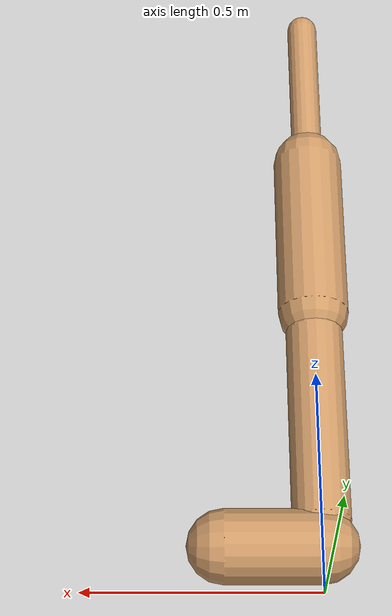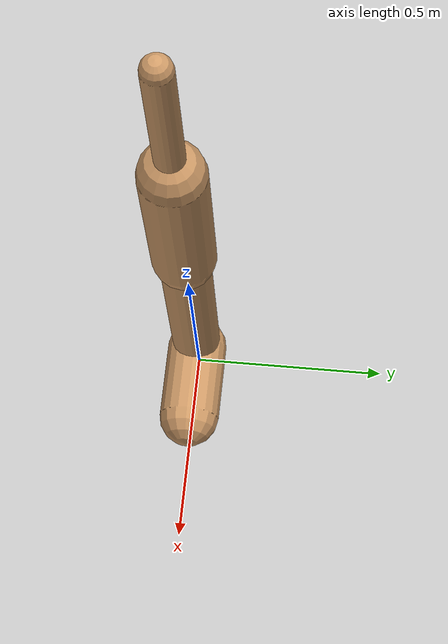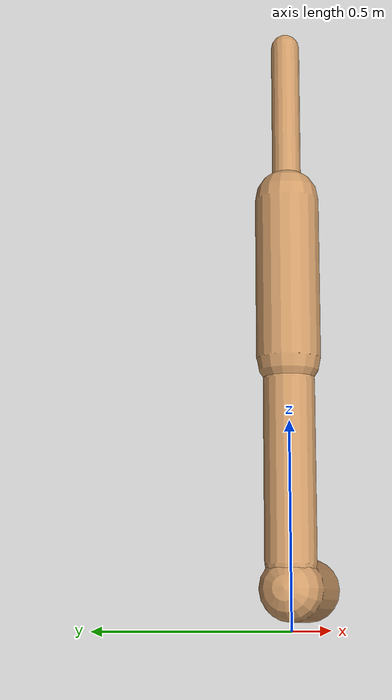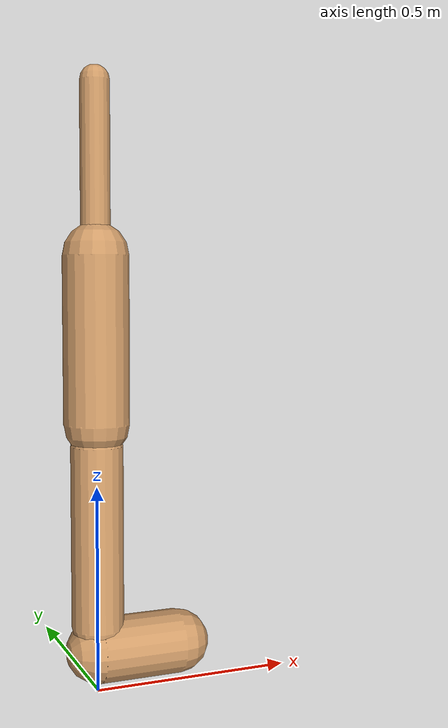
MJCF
<mujoco model="walker2d">
  <compiler angle="degree" coordinate="global" inertiafromgeom="true" />
  <default>
    <joint armature="0.01" damping=".1" limited="true" />
    <geom conaffinity="0" condim="3" contype="1" density="1000" friction="0.8 .1 .1" rgba="0.8 0.6 .4 1" />
  </default>
  <option integrator="RK4" timestep="0.002" />
  <worldbody>

    <body name="torso" pos="0 0 -0.10876851964741154">
      <joint armature="0" axis="1 0 0" damping="0" limited="false" name="ignorex" pos="0 0 0" stiffness="0" type="slide" />
      <joint armature="0" axis="0 0 1" damping="0" limited="false" name="ignorez" pos="0 0 0" ref="1.25" stiffness="0" type="slide" />
      <joint armature="0" axis="0 1 0" damping="0" limited="false" name="ignorey" pos="0 0 0" stiffness="0" type="hinge" />
      <geom fromto="0 0 1.45 0 0 1.05" name="torso_geom" size="0.03518039817944368" type="capsule" />
      <body name="thigh">
        <joint axis="0 -1 0" name="thigh_joint" pos="0 0 1.05" range="-150 0" type="hinge" />
        <geom fromto="0.0 0.0 1.05 0.0 0.0 0.6515219303593002" name="thigh_geom" size="0.07860454708165604" type="capsule" />
        <body name="leg" pos="0.0 0.0 0.051521930359300194">
          <joint axis="0 -1 0" name="leg_joint" pos="0 0 0.6" range="-150 0" type="hinge" />
          <geom fromto="0.0 0.0 0.6 0.0 0.0 0.15724658928811133" name="leg_geom" size="0.06288363766532483" type="capsule" />
          <body name="foot" pos="0.0 0.0 0.05724658928811133">
            <joint axis="0 -1 0" name="foot_joint" pos="0 0 0.1" range="-45 45" type="hinge" />
            <geom fromto="-0.0 0.0 0.10000000000000002 0.2042840036101716 0.0 0.10000000000000002" name="foot_geom" size="0.07828822068624777" type="capsule" />
          </body>
        </body>
      </body>

      <body name="thigh_left">
        <joint axis="0 -1 0" name="thigh_left_joint" pos="0 0 1.05" range="-150 0" type="hinge" />
        <geom fromto="0.0 0.0 1.05 0.0 0.0 0.6515219303593002" name="thigh_left_geom" rgba=".7 .3 .6 1" size="0.07860454708165604" type="capsule" />
        <body name="leg_left" pos="0.0 0.0 0.051521930359300194">
          <joint axis="0 -1 0" name="leg_left_joint" pos="0 0 0.6" range="-150 0" type="hinge" />
          <geom fromto="0.0 0.0 0.6 0.0 0.0 0.15724658928811133" name="leg_left_geom" rgba=".7 .3 .6 1" size="0.06288363766532483" type="capsule" />
          <body name="foot_left" pos="0.0 0.0 0.05724658928811133">
            <joint axis="0 -1 0" name="foot_left_joint" pos="0 0 0.1" range="-45 45" type="hinge" />
            <geom fromto="-0.0 0.0 0.10000000000000002 0.2042840036101716 0.0 0.10000000000000002" name="foot_left_geom" rgba=".7 .3 .6 1" size="0.07828822068624777" type="capsule" />
          </body>
        </body>
      </body>
    </body>
  </worldbody>
  <actuator>

    <motor ctrllimited="true" ctrlrange="-1.0 1.0" gear="100" joint="thigh_joint" />
    <motor ctrllimited="true" ctrlrange="-1.0 1.0" gear="100" joint="leg_joint" />
    <motor ctrllimited="true" ctrlrange="-1.0 1.0" gear="100" joint="foot_joint" />
    <motor ctrllimited="true" ctrlrange="-1.0 1.0" gear="100" joint="thigh_left_joint" />
    <motor ctrllimited="true" ctrlrange="-1.0 1.0" gear="100" joint="leg_left_joint" />
    <motor ctrllimited="true" ctrlrange="-1.0 1.0" gear="100" joint="foot_left_joint" />

  </actuator>
</mujoco>
